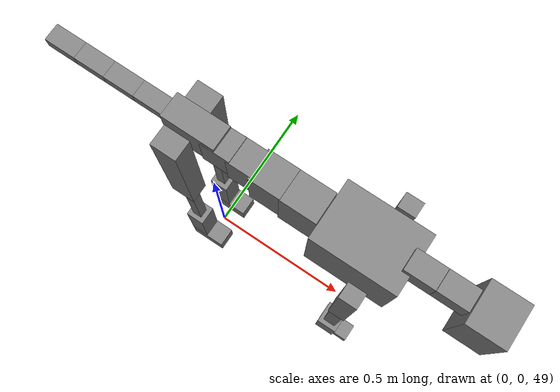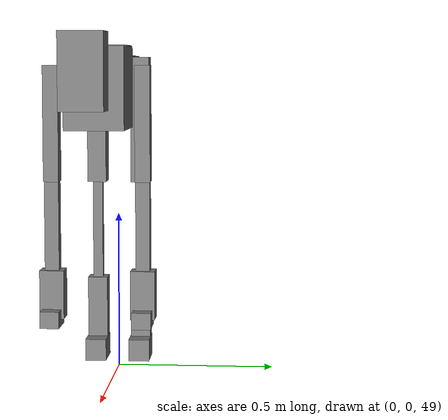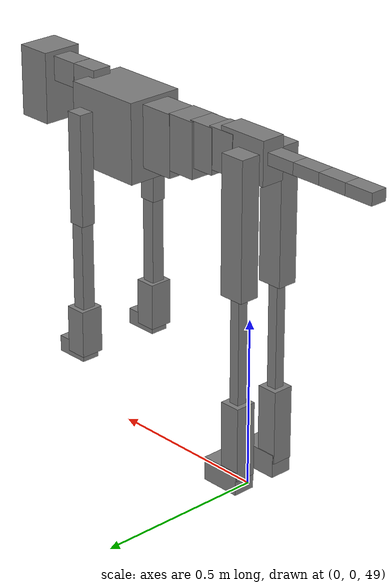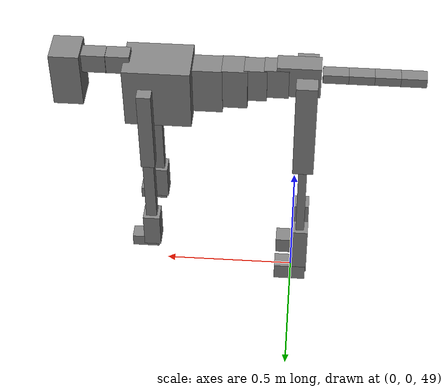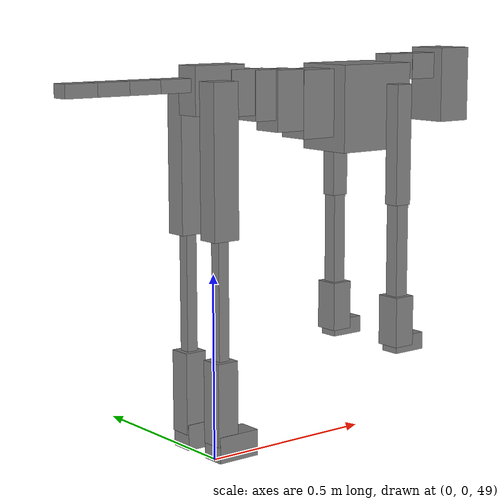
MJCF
<mujoco model="dog">

    <default>
        <joint armature="0.02" stiffness="1" damping="0.2" limited="true"/>
        <geom condim="3" friction="1 0.05 0.05" margin="0.01"/>
        <motor ctrllimited="true" ctrlrange="-1.0 1.0" forcelimited="true" gear="50"/>
    </default>

    <compiler inertiafromgeom="true" angle="radian"/>

    <option timestep="0.016" iterations="50" tolerance="1e-10" solver="Newton" jacobian="dense" cone="pyramidal"/>

    <size nconmax="20000" njmax="60000" nstack="5000000"/>
    <visual>
        <map force="0.1" zfar="30"/>
        <rgba haze="0.15 0.25 0.35 1"/>
        <quality shadowsize="2048"/>
        <global offwidth="800" offheight="800"/>
    </visual>

    <asset>
        <texture type="skybox" builtin="gradient" rgb1="0.3 0.5 0.7" rgb2="0 0 0" width="512" height="512"/>
        <texture name="texplane" type="2d" builtin="checker" rgb1=".2 .3 .4" rgb2=".1 0.15 0.2" width="512" height="512"
                 mark="cross" markrgb=".8 .8 .8"/>
        <texture name="texgeom" type="cube" builtin="flat" mark="cross" width="127" height="1278" rgb1="0.8 0.6 0.4"
                 rgb2="0.8 0.6 0.4" markrgb="1 1 1" random="0.01"/>

        <material name="matplane" reflectance="0.3" texture="texplane" texrepeat="1 1" texuniform="true"/>
        <material name="matgeom" texture="texgeom" texuniform="true" rgba="0.8 0.6 .4 1"/>
    </asset>

    <worldbody>
        <geom name="floor" pos="0 0 0" size="0 0 .25" type="plane" material="matplane" condim="3"/>

        <light directional="false" diffuse=".2 .2 .2" specular="0 0 0" pos="0 0 5" dir="0 0 -1" castshadow="false"/>
        <light mode="targetbodycom" target="torso" directional="false" diffuse=".8 .8 .8" specular="0.3 0.3 0.3"
               pos="0 0 4.0" dir="0 0 -1"/>

        <body name="root" pos="0 0 50">
            <freejoint name="root_1"/>
            <geom type="box" pos="0 0 -0.02" size="0.0774  0.0358  0.063" density="2030"/>

            <body name="spine1" pos="0.054 0 0">
                <joint name="spine1_y" axis="0 1 0" range="0 0.7" limited="true"/>
                <geom type="box" pos="0.02375 0 -0.03" size="0.04375  0.0375  0.05985" density="2030"/>

                <body name="spine2" pos="0.0612 0 0">
                    <joint name="spine2_y" axis="0 1 0" range="-0.15 0.15" limited="true"/>
                    <geom type="box" pos="0.03555  0  -0.04" size="0.04055  0.039  0.06615" density="2030"/>

                    <body name="spine3" pos="0.0730 0 0">
                        <joint name="spine3_y" axis="0 1 0" range="-0.15 0.15" limited="true"/>
                        <geom type="box" pos="0.03555  0  -0.057" size="0.04555  0.0445  0.081" density="2030"/>

                        <body name="spine4" pos="0.0780 0 0">
                            <joint name="spine4_y" axis="0 1 0" range="-0.15 0.15" limited="true"/>
                            <geom type="box" pos="0.05265  0  -0.07" size="0.05265  0.045  0.09135" density="2030"/>

                            <body name="torso" pos="0.1082 0 0">
                                <joint name="torso_y" axis="0 1 0" range="-0.15 0.15" limited="true"/>
                                <geom type="box" pos="0.11925  0  -0.085" size="0.11925  0.085  0.11745"
                                      density="2030"/>

                                <body name="neck1" pos="0.2160  0   0.0180">
                                    <joint name="neck1_y" axis="0 1 0" range="-1.2  -1" limited="true"/>
                                    <geom type="box" pos="0.0423  0  0" size="0.0423  0.03  0.036" density="2325"/>

                                    <body name="neck2" pos="0.0853  0  0">
                                        <joint name="neck2_y" axis="0 1 0" range="0.1  0" limited="true"/>
                                        <geom type="box" pos="0.0423  0  0" size="0.0423  0.03  0.036" density="2325"/>

                                        <body name="head" pos="0.0853  0  0">
                                            <joint name="head_y" axis="0 1 0" range="-0.3  -0.2" limited="true"/>
                                            <geom type="box" pos="0.0531  0  -0.055" size="0.0531  0.06  0.1044"
                                                  density="4030"/>

                                        </body>
                                    </body>
                                </body>

                                <body name="front_shoulder" pos="0.156  0   -0.0480">
                                    <joint name="front_shoulder_y" axis="0 1 0" range="-1 1.5" limited="true"/>
                                    <geom type="box" pos="0 0.13 -0.1373" size="0.0255  0.0218  0.1640" density="1158"/>
                                    <geom type="box" pos="0 -0.13 -0.1373" size="0.0255  0.0218  0.1640"
                                          density="1158"/>

                                    <body name="front_elbow" pos="0  0  -0.2746">
                                        <joint name="front_elbow_y" axis="0 1 0" range="-2 0" limited="true"/>
                                        <geom type="box" pos="0 0.13 -0.1468" size="0.0198  0.0203  0.1468"
                                              density="1081"/>
                                        <geom type="box" pos="0 -0.13 -0.1468" size="0.0198  0.0203  0.1468"
                                              density="1081"/>

                                        <body name="front_wrist" pos="0  0  -0.2936">
                                            <joint name="front_wrist_y" axis="0 1 0" range="-0.2 0" limited="true"/>
                                            <geom type="box" pos="0 0.13 -0.0565" size="0.0313  0.0347  0.0696"
                                                  density="1664"/>
                                            <geom type="box" pos="0 -0.13 -0.0565" size="0.0313  0.0347  0.0696"
                                                  density="1664"/>

                                            <body name="front_finger_end" pos="0  0  -0.1129">
                                                <joint name="front_finger_y" axis="0 1 0" range="-0.4 1"
                                                       limited="true"/>
                                                <geom type="box" pos="0.0272  0.13  -0.0088"
                                                      size="0.0498  0.0272  0.0238" density="1515"/>
                                                <geom type="box" pos="0.0272  -0.13  -0.0088"
                                                      size="0.0498  0.0272  0.0238" density="1515"/>

                                            </body>

                                        </body>
                                    </body>
                                </body>

                            </body>
                        </body>
                    </body>
                </body>
            </body>

            <body name="back_hip" pos="-0.03 0 -0.018">
                <joint name="back_hip_y" axis="0 1 0" range="-1.5 0.3" limited="true"/>
                <geom type="box" pos="0 0.07 -0.1777" size="0.0381  0.0299  0.2005" density="1154"/>
                <geom type="box" pos="0 -0.07 -0.1777" size="0.0381  0.0299  0.2005" density="1154"/>

                <body name="back_knee" pos="0  0  -0.3555">
                    <joint name="back_knee_y" axis="0 1 0" range="0 2.8" limited="true"/>
                    <geom type="box" pos="0 0.07 -0.1737" size="0.0157  0.0155  0.1893" density="1227"/>
                    <geom type="box" pos="0 -0.07 -0.1737" size="0.0157  0.0155  0.1893" density="1227"/>

                    <body name="back_ankle" pos="0  0  -0.3475">
                        <joint name="back_ankle_y" axis="0 1 0" range="-2.2 0" limited="true"/>
                        <geom type="box" pos="0 0.07 -0.0989" size="0.0313  0.0313  0.1102" density="1284"/>
                        <geom type="box" pos="0 -0.07 -0.0989" size="0.0313  0.0313  0.1102" density="1284"/>

                        <body name="back_toe_end" pos="0  0  -0.1978">
                            <joint name="back_toe_y" axis="0 1 0" range="-0.4 1" limited="true"/>
                            <geom type="box" pos="0.0331  0.07  -0.0199" size="0.0607  0.0331  0.0349" density="1515"/>
                            <geom type="box" pos="0.0331  -0.07  -0.0199" size="0.0607  0.0331  0.0349" density="1515"/>

                        </body>
                    </body>
                </body>
            </body>

            <body name="tail1" pos="-0.074 0 -0.006">
                <joint name="tail1_y" axis="0 1 0" range="-0.2 0.2" limited="true"/>
                <geom type="box" pos="-0.0536  0  0" size="0.045  0.025  0.0175" density="1587"/>

                <body name="tail2" pos="-0.09 0 0">
                    <joint name="tail2_y" axis="0 1 0" range="-0.2 0.2" limited="true"/>
                    <geom type="box" pos="-0.0536  0  0" size="0.045  0.025  0.0175" density="1587"/>

                    <body name="tail3" pos="-0.09 0 0">
                        <joint name="tail3_y" axis="0 1 0" range="-0.2 0.2" limited="true"/>
                        <geom type="box" pos="-0.0536  0  0" size="0.045  0.025  0.0175" density="1587"/>

                        <body name="tail4" pos="-0.09 0 0">
                            <joint name="tail4_y" axis="0 1 0" range="-0.2 0.2" limited="true"/>
                            <geom type="box" pos="-0.0536  0  0" size="0.045  0.025  0.0175" density="1587"/>

                        </body>
                    </body>
                </body>
            </body>
        </body>
    </worldbody>

    <actuator>
        <motor joint="spine1_y" forcerange="-150 150     "/>
        <motor joint="spine2_y" forcerange="-150 150     "/>
        <motor joint="spine3_y" forcerange="-150 150     "/>
        <motor joint="spine4_y" forcerange="-150 150     "/>
        <motor joint="torso_y" forcerange="-150 150     "/>
        <motor joint="neck1_y" forcerange="-100 100       "/>
        <motor joint="neck2_y" forcerange="-100 100       "/>
        <motor joint="head_y" forcerange="-150 150       "/>
        <motor joint="front_shoulder_y" forcerange="-124.90 120.49"/>
        <motor joint="front_elbow_y" forcerange="-122.48 124.94"/>
        <motor joint="front_wrist_y" forcerange="-138.45 139.48"/>
        <motor joint="front_finger_y" forcerange="-73.46 31.47"/>
        <motor joint="back_hip_y" forcerange="-346.43 252.37"/>
        <motor joint="back_knee_y" forcerange="-212.99 212.59"/>
        <motor joint="back_angle_y" forcerange="-182.73 217.91"/>
        <motor joint="back_toe_y" forcerange="-54.73 129.96"/>
        <motor joint="tail1_y" forcerange="-50 50     "/>
        <motor joint="tail2_y" forcerange="-50 50     "/>
        <motor joint="tail3_y" forcerange="-50 50     "/>
        <motor joint="tail4_y" forcerange="-50 50     "/>
    </actuator>
</mujoco>
